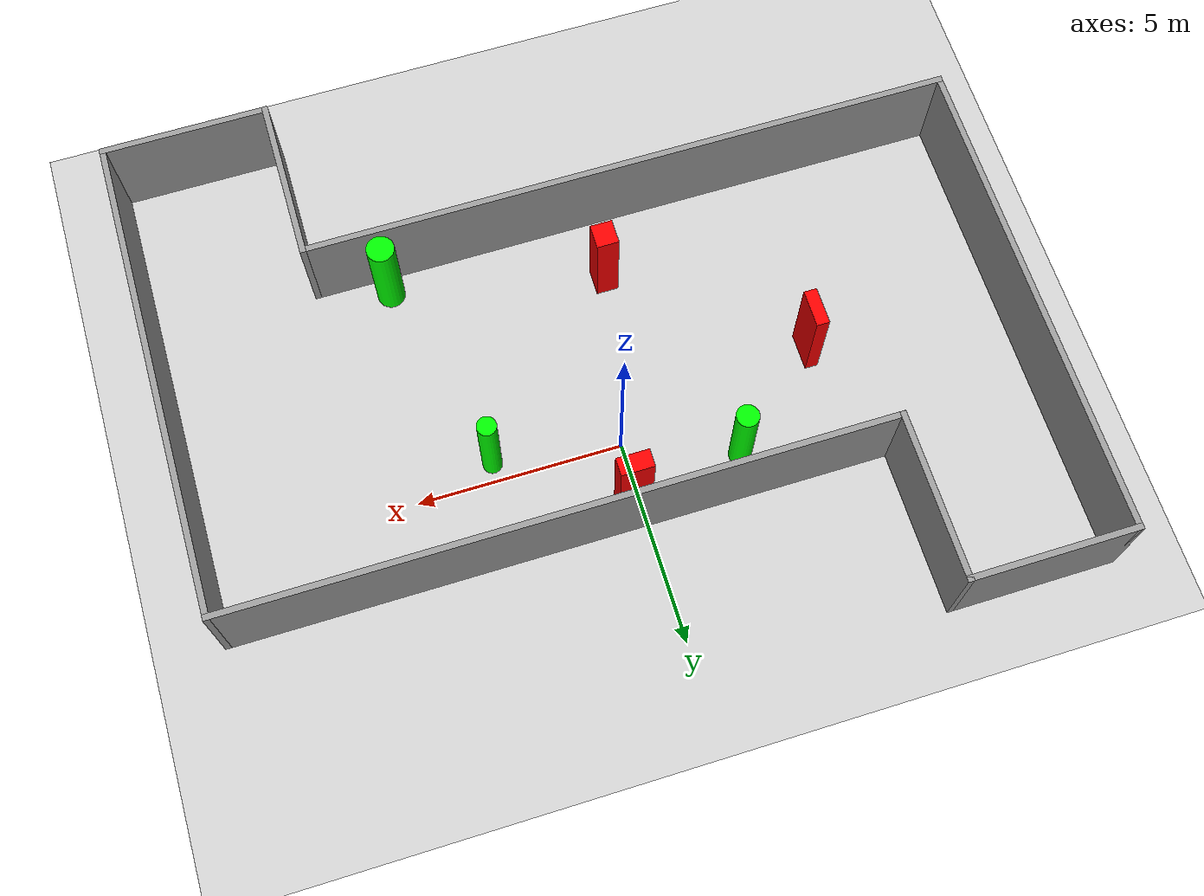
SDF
<sdf version="1.7">
 <world name="default">
  <light name="sun" type="directional">
   <pose>0 0 10 0 -0 0</pose>
   <diffuse>0.8 0.8 0.8 1</diffuse>
   <specular>0.2 0.2 0.2 1</specular>
   <attenuation>
    <range>1000</range>
    <constant>0.9</constant>
    <linear>0.01</linear>
    <quadratic>0.001</quadratic>
   </attenuation>
   <direction>-0.5 0.1 -0.9</direction>
   <spot><inner_angle>0</inner_angle><outer_angle>0</outer_angle><falloff>0</falloff></spot>
  </light>
  <model name="ground_plane">
   <static>1</static>
   <link name="link">
    <collision name="collision">
     <geometry><plane><normal>0 0 1</normal><size>100 100</size></plane></geometry>
     <surface>
      <contact><collide_bitmask>65535</collide_bitmask></contact>
      <friction><ode><mu>100</mu><mu2>50</mu2></ode></friction>
     </surface>
    </collision>
    <visual name="visual">
     <cast_shadows>0</cast_shadows>
     <geometry><plane><normal>0 0 1</normal><size>100 100</size></plane></geometry>
     <material>
      <script><uri>file://media/materials/scripts/gazebo.material</uri><name>Gazebo/Grey</name></script>
     </material>
    </visual>
   </link>
  </model>
  <gravity>0 0 -9.8</gravity>
  <magnetic_field>6e-06 2.3e-05 -4.2e-05</magnetic_field>
  <atmosphere type="adiabatic"/>
  <physics type="ode">
   <max_step_size>0.001</max_step_size>
   <real_time_factor>1</real_time_factor>
   <real_time_update_rate>1000</real_time_update_rate>
  </physics>
  <scene><ambient>0.4 0.4 0.4 1</ambient><background>0.7 0.7 0.7 1</background><shadows>1</shadows></scene>
  <spherical_coordinates>
   <surface_model>EARTH_WGS84</surface_model>
   <latitude_deg>0</latitude_deg>
   <longitude_deg>0</longitude_deg>
   <elevation>0</elevation>
   <heading_deg>0</heading_deg>
  </spherical_coordinates>
  <model name="my_base_walls">
   <link name="Wall_13">
    <collision name="Wall_13_Collision">
     <geometry><box><size>12.15 0.15 2.5</size></box></geometry>
     <pose>0 0 1.25 0 -0 0</pose>
    </collision>
    <visual name="Wall_13_Visual">
     <pose>0 0 1.25 0 -0 0</pose>
     <geometry><box><size>12.15 0.15 2.5</size></box></geometry>
     <material>
      <script><uri>file://media/materials/scripts/gazebo.material</uri><name>Gazebo/Grey</name></script>
      <ambient>1 1 1 1</ambient>
     </material>
     <meta><layer>0</layer></meta>
    </visual>
    <pose>10 -2 0 0 -0 1.5708</pose>
   </link>
   <link name="Wall_15">
    <collision name="Wall_15_Collision">
     <geometry><box><size>16.15 0.15 2.5</size></box></geometry>
     <pose>0 0 1.25 0 -0 0</pose>
    </collision>
    <visual name="Wall_15_Visual">
     <pose>0 0 1.25 0 -0 0</pose>
     <geometry><box><size>16.15 0.15 2.5</size></box></geometry>
     <material>
      <script><uri>file://media/materials/scripts/gazebo.material</uri><name>Gazebo/Grey</name></script>
      <ambient>1 1 1 1</ambient>
     </material>
     <meta><layer>0</layer></meta>
    </visual>
    <pose>2 4 0 0 -0 3.14159</pose>
   </link>
   <link name="Wall_17">
    <collision name="Wall_17_Collision">
     <geometry><box><size>4.15 0.15 2.5</size></box></geometry>
     <pose>0 0 1.25 0 -0 0</pose>
    </collision>
    <visual name="Wall_17_Visual">
     <pose>0 0 1.25 0 -0 0</pose>
     <geometry><box><size>4.15 0.15 2.5</size></box></geometry>
     <material>
      <script><uri>file://media/materials/scripts/gazebo.material</uri><name>Gazebo/Grey</name></script>
      <ambient>1 1 1 1</ambient>
     </material>
     <meta><layer>0</layer></meta>
    </visual>
    <pose>6 -6 0 0 -0 -1.5708</pose>
   </link>
   <link name="Wall_19">
    <collision name="Wall_19_Collision">
     <geometry><box><size>12.15 0.15 2.5</size></box></geometry>
     <pose>0 0 1.25 0 -0 0</pose>
    </collision>
    <visual name="Wall_19_Visual">
     <pose>0 0 1.25 0 -0 0</pose>
     <geometry><box><size>12.15 0.15 2.5</size></box></geometry>
     <material>
      <script><uri>file://media/materials/scripts/gazebo.material</uri><name>Gazebo/Grey</name></script>
      <ambient>1 1 1 1</ambient>
     </material>
     <meta><layer>0</layer></meta>
    </visual>
    <pose>-10 2 0 0 -0 1.5708</pose>
   </link>
   <link name="Wall_21">
    <collision name="Wall_21_Collision">
     <geometry><box><size>4.15 0.15 2.5</size></box></geometry>
     <pose>0 0 1.25 0 -0 0</pose>
    </collision>
    <visual name="Wall_21_Visual">
     <pose>0 0 1.25 0 -0 0</pose>
     <geometry><box><size>4.15 0.15 2.5</size></box></geometry>
     <material>
      <script><uri>file://media/materials/scripts/gazebo.material</uri><name>Gazebo/Grey</name></script>
      <ambient>1 1 1 1</ambient>
     </material>
     <meta><layer>0</layer></meta>
    </visual>
    <pose>-8 8 0 0 -0 0</pose>
   </link>
   <link name="Wall_23">
    <collision name="Wall_23_Collision">
     <geometry><box><size>4.15 0.15 2.5</size></box></geometry>
     <pose>0 0 1.25 0 -0 0</pose>
    </collision>
    <visual name="Wall_23_Visual">
     <pose>0 0 1.25 0 -0 0</pose>
     <geometry><box><size>4.15 0.15 2.5</size></box></geometry>
     <material>
      <script><uri>file://media/materials/scripts/gazebo.material</uri><name>Gazebo/Grey</name></script>
      <ambient>1 1 1 1</ambient>
     </material>
     <meta><layer>0</layer></meta>
    </visual>
    <pose>-6 6 0 0 -0 -1.5708</pose>
   </link>
   <link name="Wall_25">
    <collision name="Wall_25_Collision">
     <geometry><box><size>4.15 0.15 2.5</size></box></geometry>
     <pose>0 0 1.25 0 -0 0</pose>
    </collision>
    <visual name="Wall_25_Visual">
     <pose>0 0 1.25 0 -0 0</pose>
     <geometry><box><size>4.15 0.15 2.5</size></box></geometry>
     <material>
      <script><uri>file://media/materials/scripts/gazebo.material</uri><name>Gazebo/Grey</name></script>
      <ambient>1 1 1 1</ambient>
     </material>
     <meta><layer>0</layer></meta>
    </visual>
    <pose>8 -8 0 0 -0 0</pose>
   </link>
   <link name="Wall_9">
    <collision name="Wall_9_Collision">
     <geometry><box><size>16.15 0.15 2.5</size></box></geometry>
     <pose>0 0 1.25 0 -0 0</pose>
    </collision>
    <visual name="Wall_9_Visual">
     <pose>0 0 1.25 0 -0 0</pose>
     <geometry><box><size>16.15 0.15 2.5</size></box></geometry>
     <material>
      <script><uri>file://media/materials/scripts/gazebo.material</uri><name>Gazebo/Grey</name></script>
      <ambient>1 1 1 1</ambient>
     </material>
     <meta><layer>0</layer></meta>
    </visual>
    <pose>-2 -4 0 0 -0 3.14159</pose>
   </link>
   <static>1</static>
   <pose>-0 -2 0 0 -0 0</pose>
  </model>
  <model name="cylinder1">
   <static>1</static>
   <link name="link">
    <inertial>
     <mass>1</mass>
     <inertia><ixx>0.5</ixx><ixy>0</ixy><ixz>0</ixz><iyy>0.5</iyy><iyz>0</iyz><izz>1</izz></inertia>
    </inertial>
    <collision name="collision">
     <geometry><cylinder><radius>0.3384760447041717</radius><length>2.5</length></cylinder></geometry>
    </collision>
    <visual name="visual">
     <geometry><cylinder><radius>0.3384760447041717</radius><length>2.5</length></cylinder></geometry>
     <material>
      <ambient>0 1 0 1</ambient>
      <diffuse>0 1 0 1</diffuse>
      <specular>0.1 0.1 0.1 1</specular>
      <emissive>0 0 0 0</emissive>
     </material>
    </visual>
   </link>
   <pose>4.252428555072878 -5.48171805644675 1.25 0 0 0</pose>
  </model>
  <model name="cylinder2">
   <static>1</static>
   <link name="link">
    <inertial>
     <mass>1</mass>
     <inertia><ixx>0.5</ixx><ixy>0</ixy><ixz>0</ixz><iyy>0.5</iyy><iyz>0</iyz><izz>1</izz></inertia>
    </inertial>
    <collision name="collision">
     <geometry><cylinder><radius>0.2735593638705493</radius><length>2.5</length></cylinder></geometry>
    </collision>
    <visual name="visual">
     <geometry><cylinder><radius>0.2735593638705493</radius><length>2.5</length></cylinder></geometry>
     <material>
      <ambient>0 1 0 1</ambient>
      <diffuse>0 1 0 1</diffuse>
      <specular>0.1 0.1 0.1 1</specular>
      <emissive>0 0 0 0</emissive>
     </material>
    </visual>
   </link>
   <pose>-2.634105577522209 1.0196715620809416 1.25 0 0 0</pose>
  </model>
  <model name="cylinder3">
   <static>1</static>
   <link name="link">
    <inertial>
     <mass>1</mass>
     <inertia><ixx>0.5</ixx><ixy>0</ixy><ixz>0</ixz><iyy>0.5</iyy><iyz>0</iyz><izz>1</izz></inertia>
    </inertial>
    <collision name="collision">
     <geometry><cylinder><radius>0.2368497510600232</radius><length>2.5</length></cylinder></geometry>
    </collision>
    <visual name="visual">
     <geometry><cylinder><radius>0.2368497510600232</radius><length>2.5</length></cylinder></geometry>
     <material>
      <ambient>0 1 0 1</ambient>
      <diffuse>0 1 0 1</diffuse>
      <specular>0.1 0.1 0.1 1</specular>
      <emissive>0 0 0 0</emissive>
     </material>
    </visual>
   </link>
   <pose>3.06177727018496 -0.46241270982659 1.25 0 0 0</pose>
  </model>
  <model name="box1">
   <static>1</static>
   <link name="link">
    <inertial>
     <mass>1</mass>
     <inertia><ixx>0.083</ixx><ixy>0</ixy><ixz>0</ixz><iyy>0.083</iyy><iyz>0</iyz><izz>0.083</izz></inertia>
    </inertial>
    <collision name="collision">
     <geometry><box><size>0.8038247944550521 0.4343130374784713 2.5</size></box></geometry>
    </collision>
    <visual name="visual">
     <geometry><box><size>0.8038247944550521 0.4343130374784713 2.5</size></box></geometry>
     <material>
      <ambient>1 0 0 1</ambient>
      <diffuse>1 0 0 1</diffuse>
      <specular>0.1 0.1 0.1 1</specular>
      <emissive>0 0 0 0</emissive>
     </material>
    </visual>
    <sensor name="my_contact" type="contact">
     <contact><collision>box_collision</collision><topic>__default_topic__</topic></contact>
    </sensor>
   </link>
   <pose>0.1252083752989952 1.338417655683922 1.25 0 0 0</pose>
  </model>
  <model name="box2">
   <static>1</static>
   <link name="link">
    <inertial>
     <mass>1</mass>
     <inertia><ixx>0.083</ixx><ixy>0</ixy><ixz>0</ixz><iyy>0.083</iyy><iyz>0</iyz><izz>0.083</izz></inertia>
    </inertial>
    <collision name="collision">
     <geometry><box><size>0.3170242047680767 0.9001312760785025 2.5</size></box></geometry>
    </collision>
    <visual name="visual">
     <geometry><box><size>0.3170242047680767 0.9001312760785025 2.5</size></box></geometry>
     <material>
      <ambient>1 0 0 1</ambient>
      <diffuse>1 0 0 1</diffuse>
      <specular>0.1 0.1 0.1 1</specular>
      <emissive>0 0 0 0</emissive>
     </material>
    </visual>
    <sensor name="my_contact" type="contact">
     <contact><collision>box_collision</collision><topic>__default_topic__</topic></contact>
    </sensor>
   </link>
   <pose>-5.030829978942726 -1.0694591963951314 1.25 0 0 0</pose>
  </model>
  <model name="box3">
   <static>1</static>
   <link name="link">
    <inertial>
     <mass>1</mass>
     <inertia><ixx>0.083</ixx><ixy>0</ixy><ixz>0</ixz><iyy>0.083</iyy><iyz>0</iyz><izz>0.083</izz></inertia>
    </inertial>
    <collision name="collision">
     <geometry><box><size>0.5428972863577854 0.5924481831544057 2.5</size></box></geometry>
    </collision>
    <visual name="visual">
     <geometry><box><size>0.5428972863577854 0.5924481831544057 2.5</size></box></geometry>
     <material>
      <ambient>1 0 0 1</ambient>
      <diffuse>1 0 0 1</diffuse>
      <specular>0.1 0.1 0.1 1</specular>
      <emissive>0 0 0 0</emissive>
     </material>
    </visual>
    <sensor name="my_contact" type="contact">
     <contact><collision>box_collision</collision><topic>__default_topic__</topic></contact>
    </sensor>
   </link>
   <pose>-0.8955311666197936 -4.318737882719669 1.25 0 0 0</pose>
  </model>
 </world>
</sdf>
